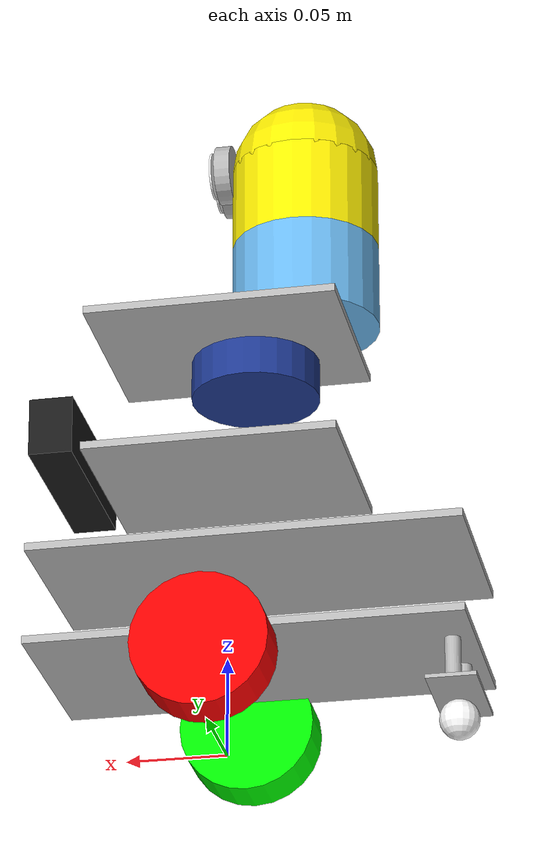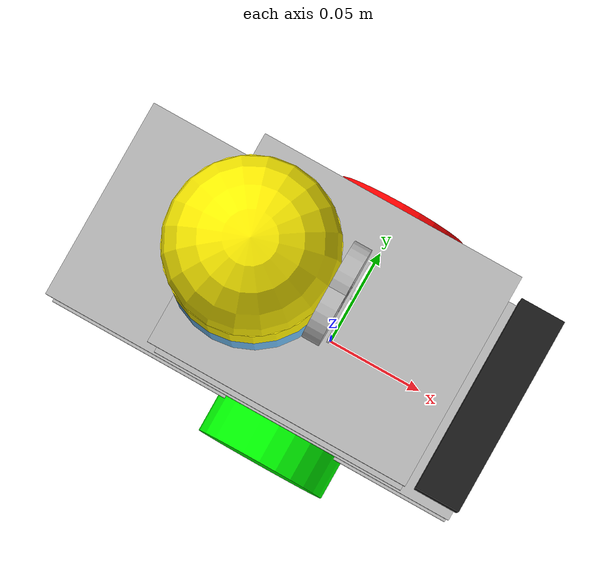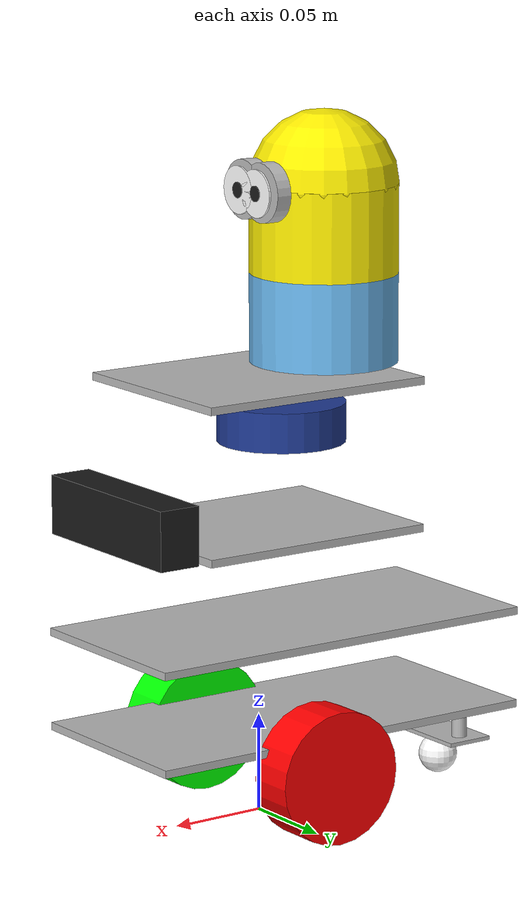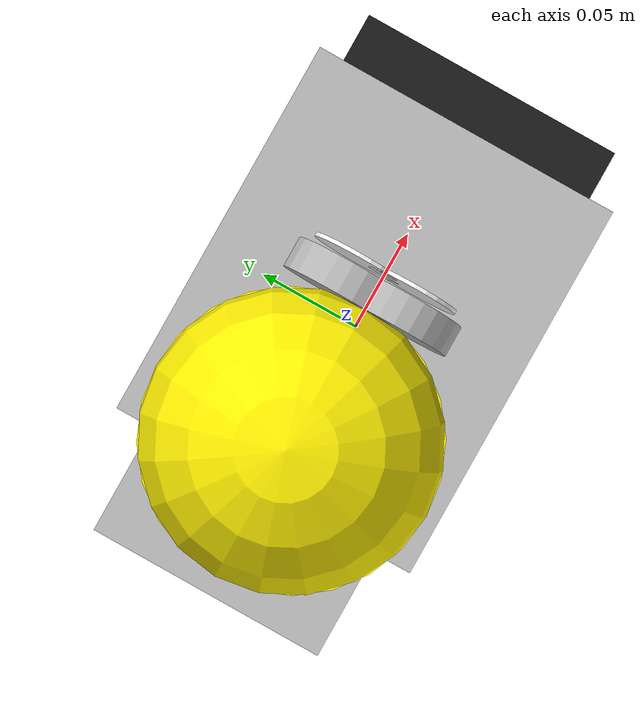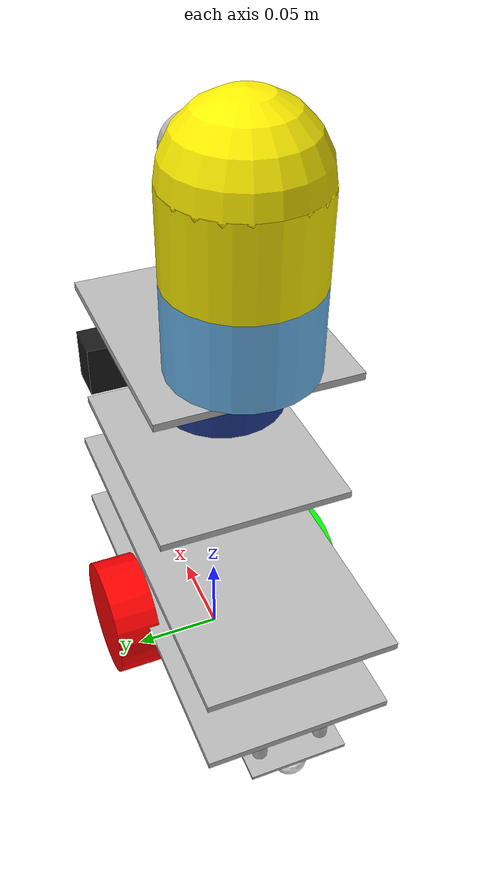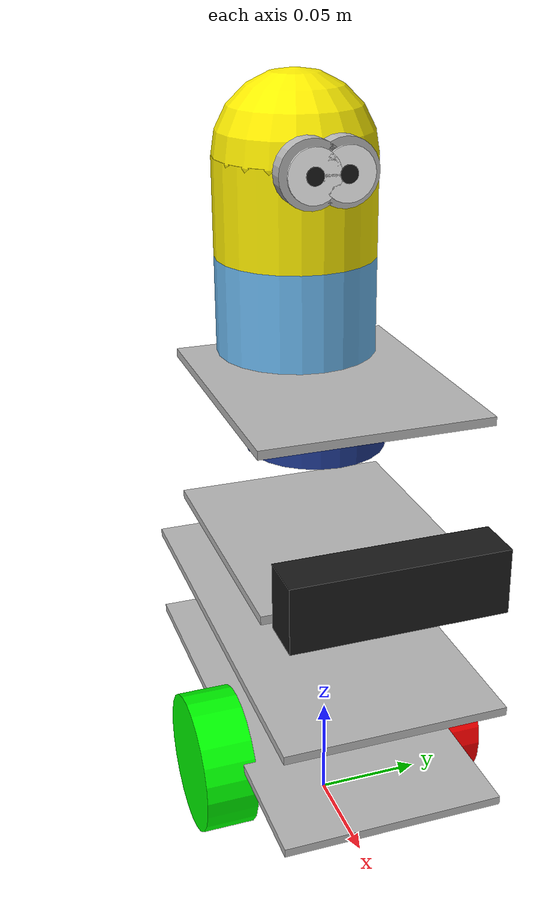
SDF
<?xml version="1.0" ?>
<sdf version="1.7">
  <model name="gpg3_gopi5go_dave">
    <pose>0.0 0.0 0.0 0.0 0.0 0.0</pose>

    <!-- Allow either base_link or base_footprint -->
    <link name="base_footprint"/>
    <link name="base_link">

      <!-- Mass 2.5lbs 1.13kg and m*(dim/2)^2 in kg/m2 -->
      <inertial>
        <!-- REMEMBER 0,0,0 is at center of shape -->
        <pose>0 0 0.19 0 0 0</pose>
        <inertia>
          <ixx>0.018</ixx>
          <ixy>0.000</ixy>
          <ixz>0.000</ixz>
          <iyy>0.004</iyy>
          <iyz>0.000</iyz>
          <izz>0.041</izz>
        </inertia>
        <mass>1.13</mass>
      </inertial>

      <collision name="base_collision">
        <pose>0 0 0.046 0 0 0</pose>
        <geometry>
          <box>
            <size>0.23 0.14 0.09</size>
          </box>
        </geometry>
      </collision>

      <visual name="base_visual">
        <pose>-0.017 0 0.047 0 0 0</pose>
        <geometry>
            <box>
              <size>0.216 0.103 0.004</size>
            </box>
        </geometry>
      </visual>

      <visual name="rear_plate_visual">
        <pose>-0.114 0 0.0225 0 0 0</pose>
        <geometry>
          <box>
            <size>0.025 0.055 0.002</size>
          </box>
        </geometry>
      </visual>

      <visual name="caster_standoff_left_visual">
        <pose>-0.114 -0.018 0.035 0 0 0</pose>
        <geometry>
          <cylinder>
            <length>0.025</length>
            <radius>0.004</radius>
          </cylinder>
        </geometry>
      </visual>

      <visual name="caster_standoff_right_visual">
        <pose>-0.114 0.018 0.035 0 0 0</pose>
        <geometry>
          <cylinder>
            <length>0.025</length>
            <radius>0.004</radius>
          </cylinder>
        </geometry>
      </visual>

      <visual name="level_2_visual">
        <pose>-0.017 0 0.096 0 0 0</pose>
        <geometry>
            <box>
              <size>0.216 0.103 0.004</size>
            </box>
        </geometry>
      </visual>

      <visual name="level_3_visual">
        <pose>0 0 0.148 0 0 0</pose>
        <geometry>
            <box>
              <size>0.128 0.104 0.004</size>
            </box>
        </geometry>
      </visual>

      <visual name="level_4_visual">
        <pose>0 0 0.223 0 0 0</pose>
        <geometry>
            <box>
              <size>0.128 0.104 0.004</size>
            </box>
        </geometry>
      </visual>

      <visual name="dave_body_bottom_visual">
        <pose>-0.04 0 0.250 0 0 0</pose>
        <geometry>
            <cylinder>
              <length>0.045</length>
              <radius>0.0375</radius>
            </cylinder>
        </geometry>
        <material>
          <ambient>0.377 0.805 0.847 1</ambient>
          <diffuse>0.419 0.725 0.941 1</diffuse>
        </material>
      </visual>

      <visual name="dave_body_top_visual">
        <pose>-0.04 0 0.295 0 0 0</pose>
        <geometry>
            <cylinder>
              <length>0.045</length>
              <radius>0.0375</radius>
            </cylinder>
        </geometry>
        <material>
          <ambient>0.9 0.847 0 1</ambient>
          <diffuse>1 0.94 0 1</diffuse>
        </material>
      </visual>

      <visual name="dave_head_visual">
        <pose>-0.04 0 0.317 0 0 0</pose>
        <geometry>
            <sphere>
              <radius>0.0375</radius>
            </sphere>
        </geometry>
        <material>
          <ambient>0.9 0.847 0 1</ambient>
          <diffuse>1 0.94 0 1</diffuse>
        </material>
      </visual>

      <visual name="right_goggle_visual">
        <pose>0 -0.0075 0.317 0 1.57 0</pose>
        <geometry>
            <cylinder>
              <length>0.008</length>
              <radius>0.015</radius>
            </cylinder>
        </geometry>
      </visual>

      <visual name="left_goggle_visual">
        <pose>0 0.0075 0.317 0 1.57 0</pose>
        <geometry>
            <cylinder>
              <length>0.008</length>
              <radius>0.015</radius>
            </cylinder>
        </geometry>
      </visual>

      <visual name="right_eyeball_visual">
        <pose>0.0065 -0.0075 0.317 0 1.57 0</pose>
        <geometry>
            <cylinder>
              <length>0.001</length>
              <radius>0.012</radius>
            </cylinder>
        </geometry>
        <material>
          <ambient>0.9 0.9 0.9 1</ambient>
          <diffuse>1 1 1 1</diffuse>
        </material>
      </visual>

      <visual name="left_eyeball_visual">
        <pose>0.0065 0.0075 0.317 0 1.57 0</pose>
        <geometry>
            <cylinder>
              <length>0.001</length>
              <radius>0.012</radius>
            </cylinder>
        </geometry>
        <material>
          <ambient>0.9 0.9 0.9 1</ambient>
          <diffuse>1 1 1 1</diffuse>
        </material>
      </visual>

      <visual name="right_eye_visual">
        <pose>0.0068 -0.0075 0.317 0 1.57 0</pose>
        <geometry>
            <cylinder>
              <length>0.001</length>
              <radius>0.004</radius>
            </cylinder>
        </geometry>
        <material>
          <ambient>0.09 0.09 0.09 1</ambient>
          <diffuse>0.1 0.1 0.1 1</diffuse>
        </material>
      </visual>

      <visual name="left_eye_visual">
        <pose>0.0068 0.0075 0.317 0 1.57 0</pose>
        <geometry>
            <cylinder>
              <length>0.001</length>
              <radius>0.004</radius>
            </cylinder>
        </geometry>
        <material>
          <ambient>0.09 0.09 0.09 1</ambient>
          <diffuse>0.1 0.1 0.1 1</diffuse>
        </material>
      </visual>

    </link>

    <link name="base_scan">
      <inertial>
        <pose>-0.014 0 0.200 0 0 0</pose>
        <inertia>
          <ixx>0.001</ixx>
          <ixy>0.000</ixy>
          <ixz>0.000</ixz>
          <iyy>0.001</iyy>
          <iyz>0.000</iyz>
          <izz>0.001</izz>
        </inertia>
        <mass>0.125</mass>
      </inertial>

      <collision name="lidar_sensor_collision">
        <pose>-0.014 0 0.200 0 0 0</pose>
        <geometry>
          <cylinder>
            <radius>0.0325</radius>
            <length>0.020</length>
          </cylinder>
        </geometry>
      </collision>

      <visual name="lidar_sensor_visual">
        <pose>-0.014 0 0.20 0 0 0</pose>
        <geometry>
            <cylinder>
              <length>0.020</length>
              <radius>0.0325</radius>
            </cylinder>
        </geometry>
        <material>
          <ambient>0.109 0.204 0.518 1</ambient>
          <diffuse>0.121 0.227 0.576 1</diffuse>
        </material>
      </visual>

      <sensor name="ydlidar_x4" type="ray">
        <always_on>true</always_on>
        <visualize>false</visualize>
        <pose>-0.014 0 0.20 0 0 0</pose>
        <!-- 5 Hz rotation -->
        <update_rate>5</update_rate>
        <ray>
          <scan>
            <horizontal>
              <samples>720</samples>
              <resolution>0.5</resolution>
              <min_angle>-3.14159</min_angle>
              <max_angle>3.14159</max_angle>
            </horizontal>
          </scan>
          <range>
            <min>0.120000</min>
            <max>10.0</max>
            <!--2cm out to 0.5m, 1.5% out to 6m = 9cm-->
            <resolution>0.02000</resolution>
          </range>
          <noise>
            <type>gaussian</type>
            <mean>0.0</mean>
            <stddev>0.015</stddev>
          </noise>
        </ray>

        <plugin name="gpg3_laserscan" filename="libgazebo_ros_ray_sensor.so">
          <ros>
            <remapping>~/out:=scan</remapping>
          </ros>
          <output_type>sensor_msgs/LaserScan</output_type>
          <frame_name>base_scan</frame_name>
        </plugin>
     </sensor>

    </link>

    <link name="camera_link">
      <pose>0.08 0 0.162 0 0 0</pose>
      <inertial>
        <inertia>
          <ixx>0.001</ixx>
          <ixy>0.000</ixy>
          <ixz>0.000</ixz>
          <iyy>0.001</iyy>
          <iyz>0.000</iyz>
          <izz>0.001</izz>
        </inertia>
        <mass>0.125</mass>
      </inertial>

      <collision name="camera_collision">
        <geometry>
          <box>
            <size>0.022 0.097 0.030</size>
          </box>
        </geometry>
      </collision>

      <visual name="camera_visual">
        <geometry>
          <box>
            <size>0.022 0.097 0.030</size>
          </box>
        </geometry>
        <material>
          <ambient>0.01 0.01 0.01 1</ambient>
          <diffuse>0.1 0.1 0.1 1</diffuse>
        </material>
      </visual>
    </link>

    <link name="camera_rgb_frame">
      <pose>0.08 0 0.162 0 0 0</pose>

      <!-- topic will be the sensor name /camera -->
      <sensor name="camera" type="camera">
        <always_on>true</always_on>
        <visualize>true</visualize>
        <!-- don't need real frame rate right now -->
        <update_rate>10</update_rate>
        <camera name="oak_d_w_rgb">
          <horizontal_fov>2.23402</horizontal_fov>
          <image>
            <width>1280</width>
            <height>800</height>
            <format>R8G8B8</format>
          </image>
          <clip>
            <near>0.018</near>
            <far>300</far>
          </clip>
          <noise>
            <type>gaussian</type>
            <mean>0.0</mean>
            <stddev>0.007</stddev>
          </noise>
        </camera>
        <plugin name="camera_driver" filename="libgazebo_ros_camera.so">
            <ros>
            </ros>
        </plugin>
      </sensor>
    </link>

    <joint name="camera_joint" type="fixed">
      <pose>0.08 0 0.162 0 0 0</pose>
      <parent>base_link</parent>
      <child>camera_link</child>
      <axis>
        <xyz>0 0 1</xyz>
      </axis>
    </joint>

    <joint name="camera_rgb_joint" type="fixed">
      <parent>camera_link</parent>
      <child>camera_rgb_frame</child>
      <axis>
        <xyz>0 0 1</xyz>
      </axis>
    </joint>

    <link name="wheel_left_link">

      <inertial>
        <pose>0.0 0.058 0.033385 -1.57 0 0</pose>
        <inertia>
          <ixx>0.001</ixx>
          <ixy>0.000</ixy>
          <ixz>0.000</ixz>
          <iyy>0.001</iyy>
          <iyz>0.000</iyz>
          <izz>0.001</izz>
        </inertia>
        <mass>0.1</mass>
      </inertial>

      <collision name="left_wheel_collision">
        <pose>0.0 0.058 0.033385 -1.57 0 0</pose>
        <geometry>
          <cylinder>
            <radius>0.03385</radius>
            <length>0.025</length>
          </cylinder>
        </geometry>
          <surface>
            <friction>
              <ode>
                <mu>100000.0</mu>
                <mu2>100000.0</mu2>
                <fdir1>0 0 0</fdir1>
                <slip1>0.0</slip1>
                <slip2>0.0</slip2>
              </ode>
          </friction>
        </surface>
      </collision>

      <visual name="left_wheel_visual">
        <pose>0.0 0.058 0.033385 -1.57 0 0</pose>
        <geometry>
          <cylinder>
            <length>0.025</length>
            <radius>0.03385</radius>
          </cylinder>
        </geometry>
        <material>
          <ambient>0.9 0 0 1</ambient>
          <diffuse>1 0 0 1</diffuse>
        </material>

      </visual>
    </link>

    <link name="wheel_right_link">

      <inertial>
        <pose>0.0 -0.058 0.033385 -1.57 0 0</pose>
        <inertia>
          <ixx>0.001</ixx>
          <ixy>0.000</ixy>
          <ixz>0.000</ixz>
          <iyy>0.001</iyy>
          <iyz>0.000</iyz>
          <izz>0.001</izz>
        </inertia>
        <mass>0.1</mass>
      </inertial>

      <collision name="right_wheel_collision">
        <pose>0.0 -0.058 0.033385 -1.57 0 0</pose>
        <geometry>
          <cylinder>
            <radius>0.03385</radius>
            <length>0.025</length>
          </cylinder>
        </geometry>
          <surface>
            <friction>
              <ode>
                <mu>100000.0</mu>
                <mu2>100000.0</mu2>
                <fdir1>0 0 0</fdir1>
                <slip1>0.0</slip1>
                <slip2>0.0</slip2>
              </ode>
          </friction>
        </surface>
      </collision>

      <visual name="right_wheel_visual">
        <pose>0.0 -0.058 0.033385 -1.57 0 0</pose>
        <geometry>
          <cylinder>
            <length>0.025</length>
            <radius>0.03385</radius>
          </cylinder>
        </geometry>
        <material>
          <ambient>0 0.9 0 1</ambient>
          <diffuse>0 1 0 1</diffuse>
        </material>

      </visual>
    </link>

    <link name="rear_caster_link">

      <inertial>
        <pose>-0.114 0 0.01 0 0 0</pose>
        <inertia>
          <ixx>0.001</ixx>
          <ixy>0.000</ixy>
          <ixz>0.000</ixz>
          <iyy>0.001</iyy>
          <iyz>0.000</iyz>
          <izz>0.001</izz>
        </inertia>
        <mass>0.1</mass>
      </inertial>

      <collision name="rear_caster_collision">
        <pose>-0.114 0 0.01 0 0 0</pose>
        <geometry>
          <sphere>
            <radius>0.01</radius>
          </sphere>
        </geometry>
      </collision>

      <visual name="rear_caster_visual">
        <pose>-0.114 0 0.01 0 0 0</pose>
        <geometry>
          <sphere>
            <radius>0.01</radius>
          </sphere>
        </geometry>
        <material>
          <ambient>0.9 0.9 0.9 1</ambient>
          <diffuse>1 1 1 1</diffuse>
        </material>
      </visual>

    </link>

    <joint name="wheel_left_joint" type="revolute">
      <parent>base_link</parent>
      <child>wheel_left_link</child>
      <pose>0.0 0.058 0.033385 -1.57 0 0</pose>
     <axis>
        <xyz>0 0 1</xyz>
      </axis>
    </joint>

    <joint name="wheel_right_joint" type="revolute">
      <parent>base_link</parent>
      <child>wheel_right_link</child>
      <pose>0.0 -0.058 0.033385 -1.57 0 0</pose>
      <axis>
        <xyz>0 0 1</xyz>
      </axis>
    </joint>

    <joint name="oak_d_w_joint" type="fixed">
      <parent>base_link</parent>
      <child>base_image</child>
      <pose>0 0 0 0 0 0</pose>
      <axis>
        <xyz>0 0 1</xyz>
      </axis>
    </joint>

    <joint name="lidar_joint" type="fixed">
      <parent>base_link</parent>
      <child>base_scan</child>
      <pose>0 0 0 0 0 0</pose>
      <axis>
        <xyz>0 0 1</xyz>
      </axis>
    </joint>

    <!-- NOTE: Set joint to fixed. -->
    <!-- Type "ball" requires three links with inertia and three joints (one for each axis) -->
    <joint name="rear_caster_joint" type="fixed">
      <parent>base_link</parent>
      <child>rear_caster_link</child>
    </joint>

    <joint name="base_joint" type="fixed">
       <parent>base_footprint</parent>
       <child>base_link</child>
       <pose>0 0 0  0 0 0</pose>
    </joint>

    <plugin name="gpg3_diff_drive" filename="libgazebo_ros_diff_drive.so">

      <ros>
      </ros>

      <update_rate>30</update_rate>

      <!-- wheels -->
      <left_joint>wheel_left_joint</left_joint>
      <right_joint>wheel_right_joint</right_joint>

      <!-- kinematics for GoPi5Go-Dave -->
      <wheel_separation>0.10509</wheel_separation>
      <wheel_diameter>0.06605</wheel_diameter>

      <!-- limits -->
      <max_wheel_torque>20</max_wheel_torque>
      <max_wheel_acceleration>1.0</max_wheel_acceleration>

      <command_topic>cmd_vel</command_topic>

      <!-- output -->
      <publish_odom>true</publish_odom>
      <publish_odom_tf>true</publish_odom_tf>
      <publish_wheel_tf>false</publish_wheel_tf>

      <odometry_topic>odom</odometry_topic>
      <odometry_frame>odom</odometry_frame>
      <robot_base_frame>base_footprint</robot_base_frame>

    </plugin>

    <plugin name="gpg3_joint_state" filename="libgazebo_ros_joint_state_publisher.so">
      <ros>
        <remapping>~/out:=joint_states</remapping>
      </ros>
      <update_rate>30</update_rate>
      <joint_name>wheel_left_joint</joint_name>
      <joint_name>wheel_right_joint</joint_name>
    </plugin>

  </model>
</sdf>
